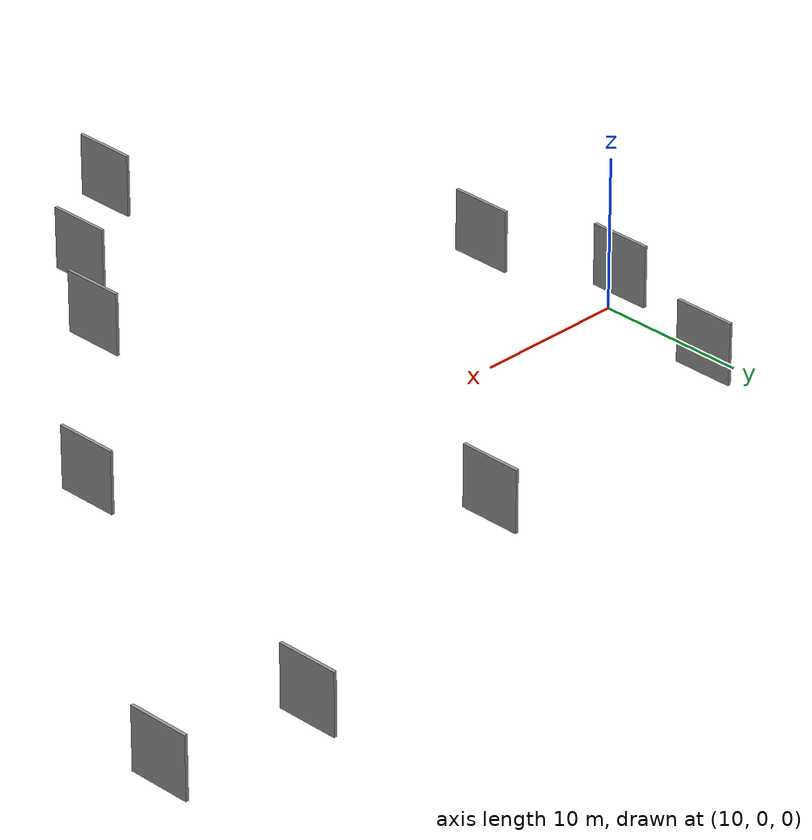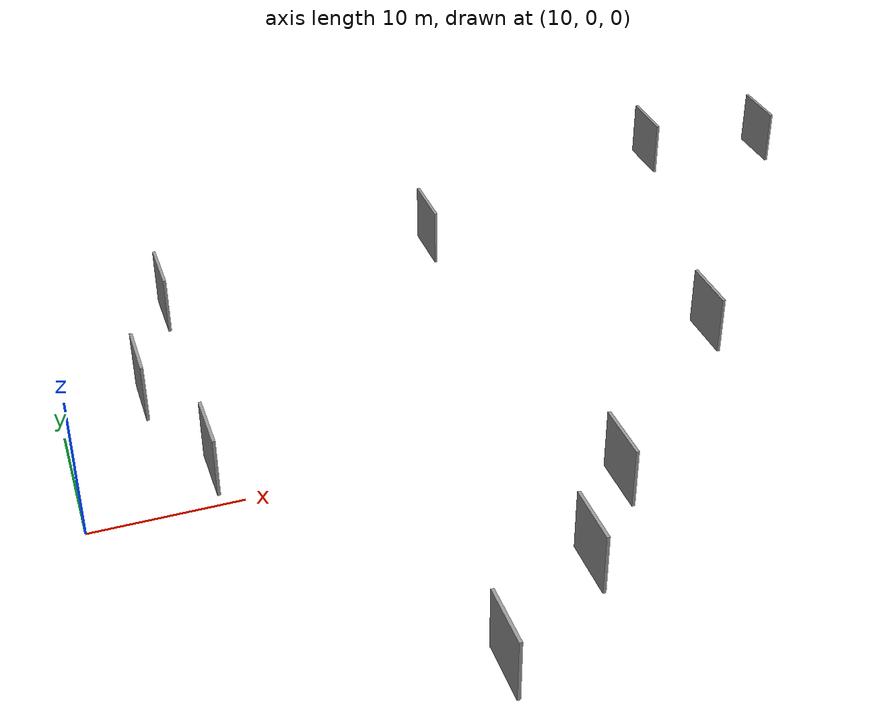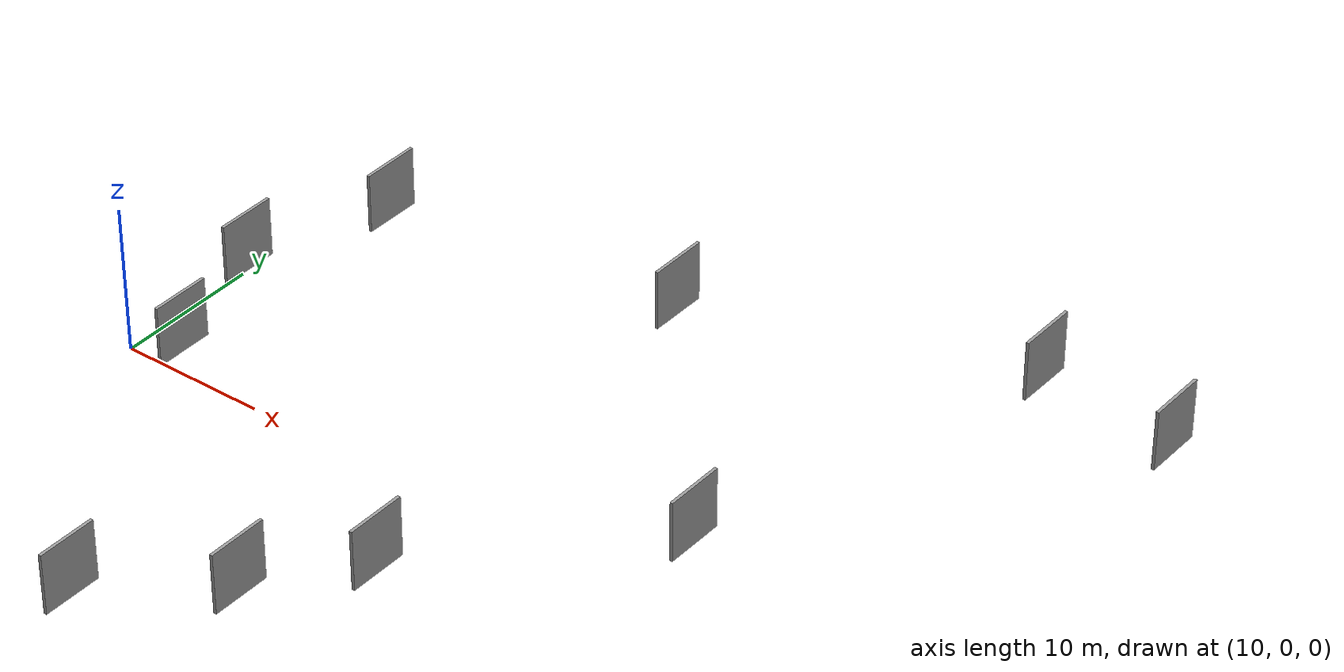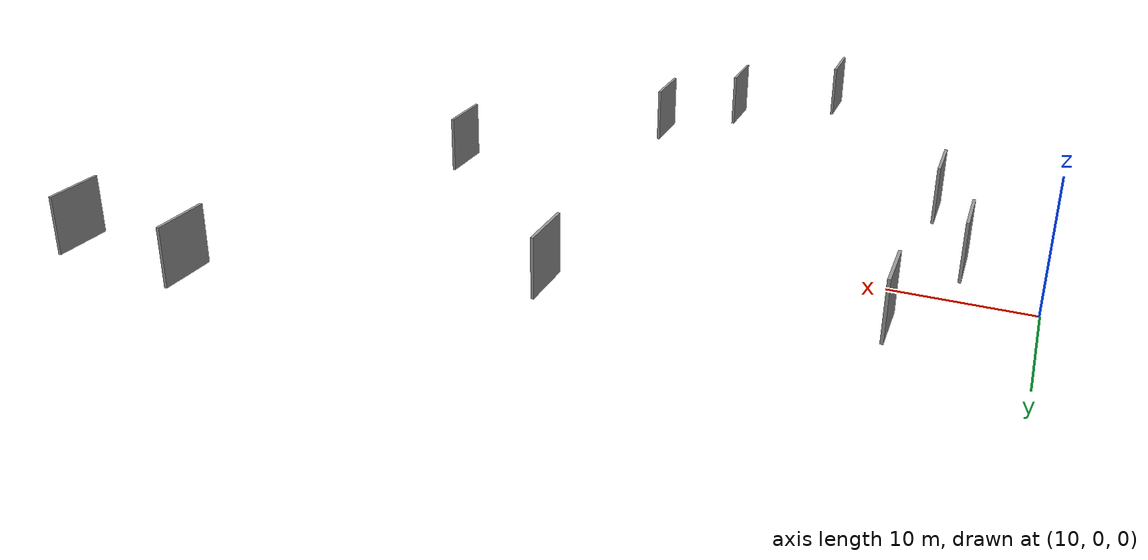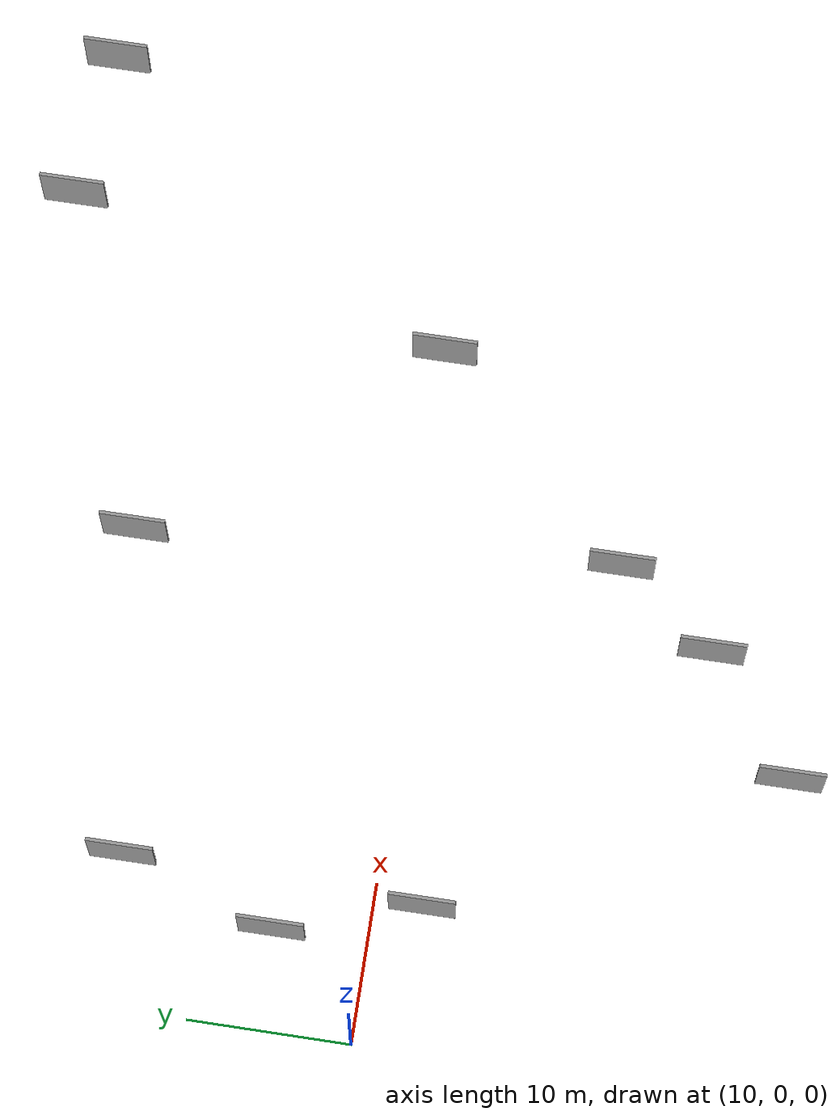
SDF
<sdf version="1.6">
 <world name="default">
  <scene>
   <sky><clouds><speed>12</speed></clouds></sky>
   <ambient>0.4 0.4 0.4 1</ambient>
   <background>0.7 0.7 0.7 1</background>
   <shadows>1</shadows>
  </scene>
  <gravity>0 0 -9.8066</gravity>
  <magnetic_field>6e-06 2.3e-05 -4.2e-05</magnetic_field>
  <physics default="0" name="default_physics" type="ode">
   <ode>
    <solver>
     <type>quick</type>
     <iters>10</iters>
     <sor>1.0</sor>
     <use_dynamic_moi_rescaling>0</use_dynamic_moi_rescaling>
    </solver>
    <constraints>
     <cfm>0</cfm>
     <erp>0.2</erp>
     <contact_max_correcting_vel>100</contact_max_correcting_vel>
     <contact_surface_layer>0.001</contact_surface_layer>
    </constraints>
   </ode>
   <max_step_size>0.004</max_step_size>
   <real_time_factor>1</real_time_factor>
   <real_time_update_rate>250</real_time_update_rate>
  </physics>
  <light name="sun" type="directional">
   <pose>0 0 10 0 0 0</pose>
   <diffuse>0.8 0.8 0.8 1</diffuse>
   <specular>0.2 0.2 0.2 1</specular>
   <attenuation>
    <range>1000</range>
    <constant>0.9</constant>
    <linear>0.01</linear>
    <quadratic>0.001</quadratic>
   </attenuation>
   <direction>-0.5 0.1 -0.9</direction>
  </light>
  <model name="grey_wall_1">
   <static>1</static>
   <pose>28.4535 -23.5446 5.0 0.000000 0.000000 1.570796</pose>
   <link name="link">
    <pose>0 0 2.00 0 0 0</pose>
    <collision name="collision"><geometry><box><size>4.00 0.2 4.00</size></box></geometry></collision>
    <visual name="visual">
     <cast_shadows>0</cast_shadows>
     <geometry><box><size>4.00 0.2 4.00</size></box></geometry>
     <material>
      <script>
       <uri>model://grey_wall/materials/scripts</uri>
       <uri>model://grey_wall/materials/textures</uri>
       <name>vrc/grey_wall</name>
      </script>
     </material>
    </visual>
   </link>
  </model>
  <model name="grey_wall_2">
   <static>1</static>
   <pose>52.0833 0.7691 5.0 0.000000 0.000000 1.570796</pose>
   <link name="link">
    <pose>0 0 2.00 0 0 0</pose>
    <collision name="collision"><geometry><box><size>4.00 0.2 4.00</size></box></geometry></collision>
    <visual name="visual">
     <cast_shadows>0</cast_shadows>
     <geometry><box><size>4.00 0.2 4.00</size></box></geometry>
     <material>
      <script>
       <uri>model://grey_wall/materials/scripts</uri>
       <uri>model://grey_wall/materials/textures</uri>
       <name>vrc/grey_wall</name>
      </script>
     </material>
    </visual>
   </link>
  </model>
  <model name="grey_wall_3">
   <static>1</static>
   <pose>37.9973 17.6039 5.0 0.000000 0.000000 1.570796</pose>
   <link name="link">
    <pose>0 0 2.00 0 0 0</pose>
    <collision name="collision"><geometry><box><size>4.00 0.2 4.00</size></box></geometry></collision>
    <visual name="visual">
     <cast_shadows>0</cast_shadows>
     <geometry><box><size>4.00 0.2 4.00</size></box></geometry>
     <material>
      <script>
       <uri>model://grey_wall/materials/scripts</uri>
       <uri>model://grey_wall/materials/textures</uri>
       <name>vrc/grey_wall</name>
      </script>
     </material>
    </visual>
   </link>
  </model>
  <model name="grey_wall_4">
   <static>1</static>
   <pose>58.9197 25.0237 5.0 0.000000 0.000000 1.570796</pose>
   <link name="link">
    <pose>0 0 2.00 0 0 0</pose>
    <collision name="collision"><geometry><box><size>4.00 0.2 4.00</size></box></geometry></collision>
    <visual name="visual">
     <cast_shadows>0</cast_shadows>
     <geometry><box><size>4.00 0.2 4.00</size></box></geometry>
     <material>
      <script>
       <uri>model://grey_wall/materials/scripts</uri>
       <uri>model://grey_wall/materials/textures</uri>
       <name>vrc/grey_wall</name>
      </script>
     </material>
    </visual>
   </link>
  </model>
  <model name="grey_wall_5">
   <static>1</static>
   <pose>35.5991 -17.9066 5.0 0.000000 0.000000 1.570796</pose>
   <link name="link">
    <pose>0 0 2.00 0 0 0</pose>
    <collision name="collision"><geometry><box><size>4.00 0.2 4.00</size></box></geometry></collision>
    <visual name="visual">
     <cast_shadows>0</cast_shadows>
     <geometry><box><size>4.00 0.2 4.00</size></box></geometry>
     <material>
      <script>
       <uri>model://grey_wall/materials/scripts</uri>
       <uri>model://grey_wall/materials/textures</uri>
       <name>vrc/grey_wall</name>
      </script>
     </material>
    </visual>
   </link>
  </model>
  <model name="grey_wall_6">
   <static>1</static>
   <pose>14.9654 5.4709 5.0 0.000000 0.000000 1.570796</pose>
   <link name="link">
    <pose>0 0 2.00 0 0 0</pose>
    <collision name="collision"><geometry><box><size>4.00 0.2 4.00</size></box></geometry></collision>
    <visual name="visual">
     <cast_shadows>0</cast_shadows>
     <geometry><box><size>4.00 0.2 4.00</size></box></geometry>
     <material>
      <script>
       <uri>model://grey_wall/materials/scripts</uri>
       <uri>model://grey_wall/materials/textures</uri>
       <name>vrc/grey_wall</name>
      </script>
     </material>
    </visual>
   </link>
  </model>
  <model name="grey_wall_7">
   <static>1</static>
   <pose>68.3067 23.9417 5.0 0.000000 0.000000 1.570796</pose>
   <link name="link">
    <pose>0 0 2.00 0 0 0</pose>
    <collision name="collision"><geometry><box><size>4.00 0.2 4.00</size></box></geometry></collision>
    <visual name="visual">
     <cast_shadows>0</cast_shadows>
     <geometry><box><size>4.00 0.2 4.00</size></box></geometry>
     <material>
      <script>
       <uri>model://grey_wall/materials/scripts</uri>
       <uri>model://grey_wall/materials/textures</uri>
       <name>vrc/grey_wall</name>
      </script>
     </material>
    </visual>
   </link>
  </model>
  <model name="grey_wall_8">
   <static>1</static>
   <pose>40.1130 -11.8185 5.0 0.000000 0.000000 1.570796</pose>
   <link name="link">
    <pose>0 0 2.00 0 0 0</pose>
    <collision name="collision"><geometry><box><size>4.00 0.2 4.00</size></box></geometry></collision>
    <visual name="visual">
     <cast_shadows>0</cast_shadows>
     <geometry><box><size>4.00 0.2 4.00</size></box></geometry>
     <material>
      <script>
       <uri>model://grey_wall/materials/scripts</uri>
       <uri>model://grey_wall/materials/textures</uri>
       <name>vrc/grey_wall</name>
      </script>
     </material>
    </visual>
   </link>
  </model>
  <model name="grey_wall_9">
   <static>1</static>
   <pose>18.1110 14.9350 5.0 0.000000 0.000000 1.570796</pose>
   <link name="link">
    <pose>0 0 2.00 0 0 0</pose>
    <collision name="collision"><geometry><box><size>4.00 0.2 4.00</size></box></geometry></collision>
    <visual name="visual">
     <cast_shadows>0</cast_shadows>
     <geometry><box><size>4.00 0.2 4.00</size></box></geometry>
     <material>
      <script>
       <uri>model://grey_wall/materials/scripts</uri>
       <uri>model://grey_wall/materials/textures</uri>
       <name>vrc/grey_wall</name>
      </script>
     </material>
    </visual>
   </link>
  </model>
  <model name="grey_wall_10">
   <static>1</static>
   <pose>17.6198 -3.0827 5.0 0.000000 0.000000 1.570796</pose>
   <link name="link">
    <pose>0 0 2.00 0 0 0</pose>
    <collision name="collision"><geometry><box><size>4.00 0.2 4.00</size></box></geometry></collision>
    <visual name="visual">
     <cast_shadows>0</cast_shadows>
     <geometry><box><size>4.00 0.2 4.00</size></box></geometry>
     <material>
      <script>
       <uri>model://grey_wall/materials/scripts</uri>
       <uri>model://grey_wall/materials/textures</uri>
       <name>vrc/grey_wall</name>
      </script>
     </material>
    </visual>
   </link>
  </model>
 </world>
</sdf>
